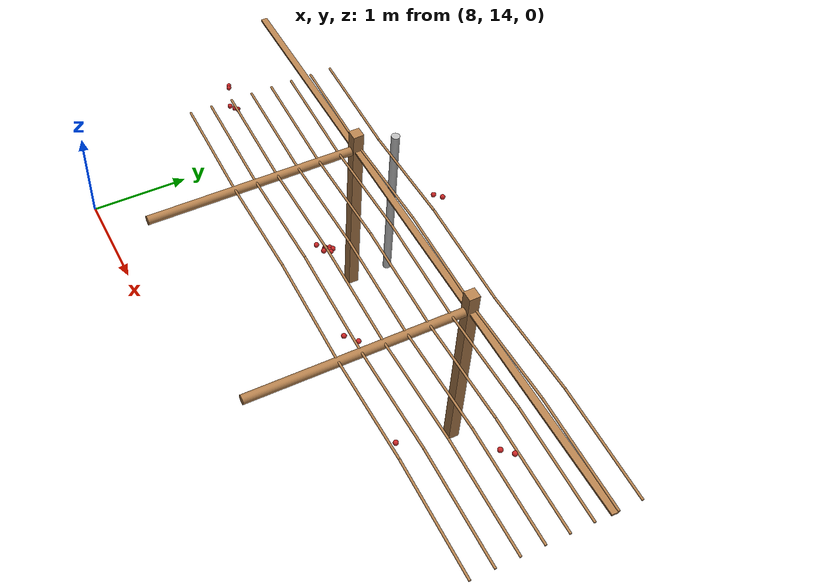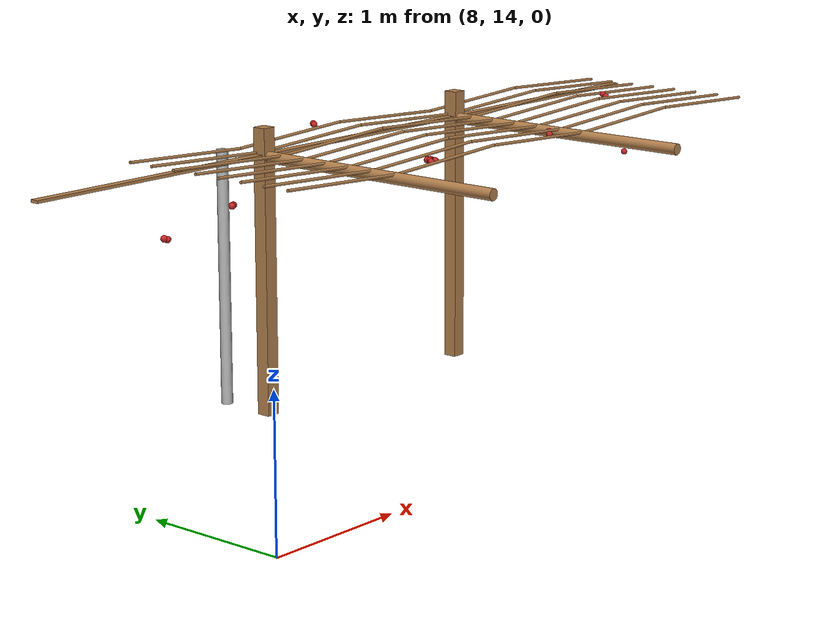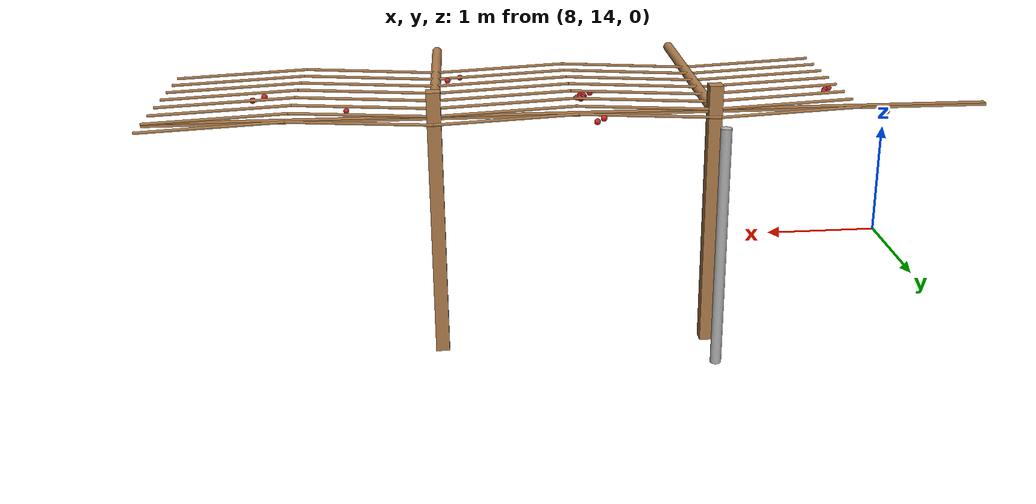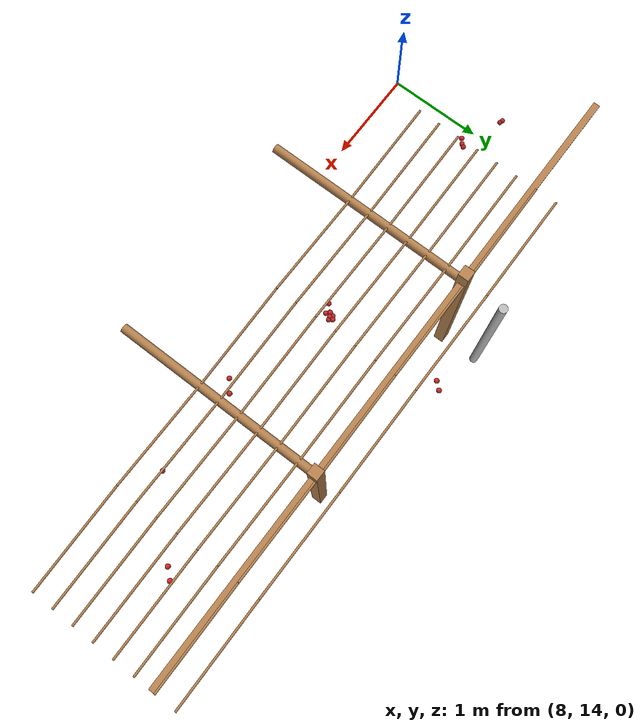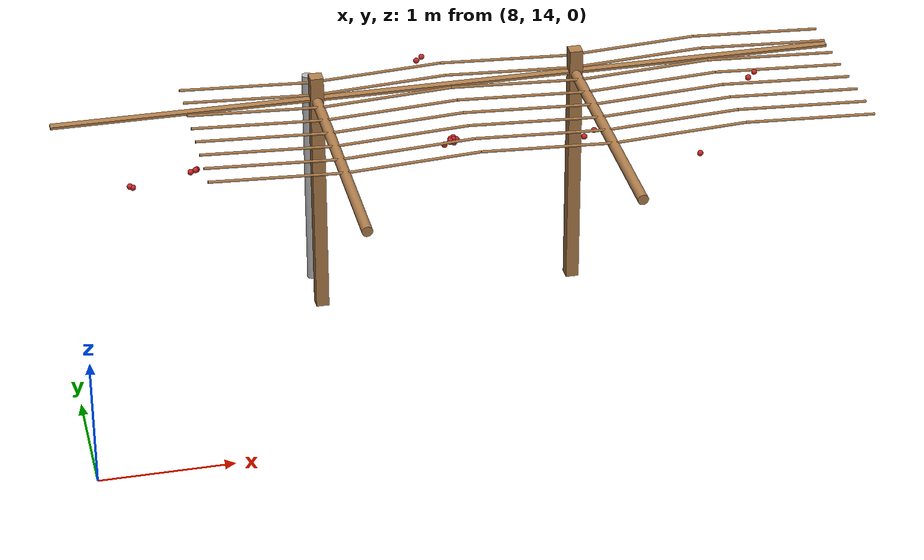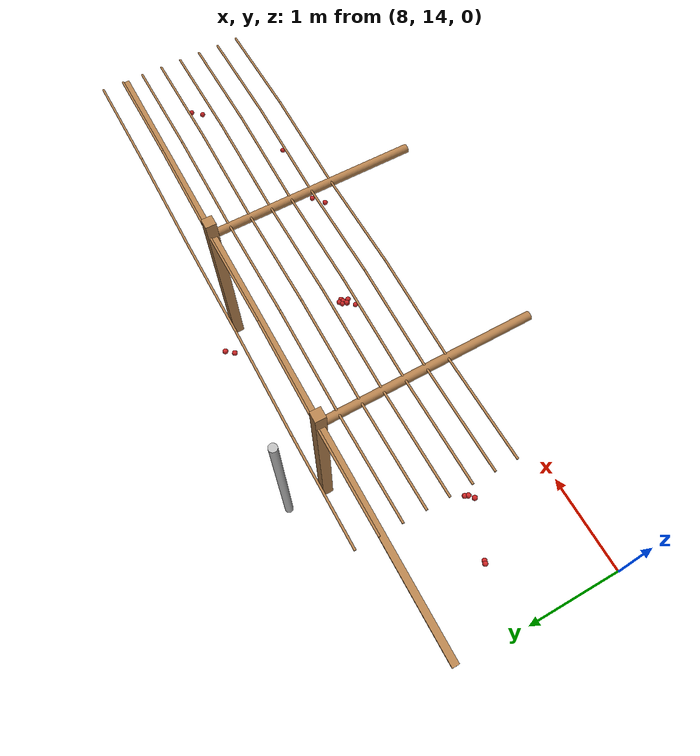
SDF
<sdf version="1.4">
 <model name="pergola">
  <include><name>post_63</name><pose>10.0 16.0 0 0 0 0</pose><uri>model://post</uri></include>
  <include><name>post_74</name><pose>12.0 16.0 0 0 0 0</pose><uri>model://post</uri></include>
  <link name="beam_52">
   <pose>9.0 16.0 1.81 0 0 0</pose>
   <collision name="collision"><geometry><box><size>2.0 0.06 0.02</size></box></geometry></collision>
   <visual name="visual">
    <geometry><box><size>2.0 0.06 0.02</size></box></geometry>
    <material><script><name>Gazebo/Wood</name></script></material>
   </visual>
   <inertial>
    <mass>5</mass>
    <inertia>
     <ixx>0.0016666666666666668</ixx>
     <ixy>0.0</ixy>
     <ixz>0.0</ixz>
     <iyy>1.6681666666666664</iyy>
     <iyz>0.0</iyz>
     <izz>1.6668333333333332</izz>
    </inertia>
   </inertial>
  </link>
  <link name="beam_63">
   <pose>11.0 16.0 1.81 0 0 0</pose>
   <collision name="collision"><geometry><box><size>2.0 0.06 0.02</size></box></geometry></collision>
   <visual name="visual">
    <geometry><box><size>2.0 0.06 0.02</size></box></geometry>
    <material><script><name>Gazebo/Wood</name></script></material>
   </visual>
   <inertial>
    <mass>5</mass>
    <inertia>
     <ixx>0.0016666666666666668</ixx>
     <ixy>0.0</ixy>
     <ixz>0.0</ixz>
     <iyy>1.6681666666666664</iyy>
     <iyz>0.0</iyz>
     <izz>1.6668333333333332</izz>
    </inertia>
   </inertial>
  </link>
  <link name="beam_74">
   <pose>13.0 16.0 1.81 0 0 0</pose>
   <collision name="collision"><geometry><box><size>2.0 0.06 0.02</size></box></geometry></collision>
   <visual name="visual">
    <geometry><box><size>2.0 0.06 0.02</size></box></geometry>
    <material><script><name>Gazebo/Wood</name></script></material>
   </visual>
   <inertial>
    <mass>5</mass>
    <inertia>
     <ixx>0.0016666666666666668</ixx>
     <ixy>0.0</ixy>
     <ixz>0.0</ixz>
     <iyy>1.6681666666666664</iyy>
     <iyz>0.0</iyz>
     <izz>1.6668333333333332</izz>
    </inertia>
   </inertial>
  </link>
  <include><name>tree_58</name><pose>10.0 16.4 0 0 0 0</pose><uri>model://tree_trunk</uri></include>
  <link name="baseBranch_57">
   <pose>10.0 15.0 1.8 1.5707963267948966 0 0</pose>
   <collision name="collision">
    <geometry><cylinder><radius>0.04</radius><length>1.94</length></cylinder></geometry>
   </collision>
   <visual name="visual">
    <geometry><cylinder><radius>0.04</radius><length>1.94</length></cylinder></geometry>
    <material><script><name>Gazebo/WoodFloor</name></script></material>
   </visual>
   <inertial>
    <mass>10</mass>
    <inertia>
     <ixx>3.140333333333333</ixx>
     <ixy>0.0</ixy>
     <ixz>0.0</ixz>
     <iyy>3.140333333333333</iyy>
     <iyz>0.0</iyz>
     <izz>0.008</izz>
    </inertia>
   </inertial>
  </link>
  <link name="baseBranch_67">
   <pose>12.0 15.0 1.8 1.5707963267948966 0 0</pose>
   <collision name="collision">
    <geometry><cylinder><radius>0.04</radius><length>1.94</length></cylinder></geometry>
   </collision>
   <visual name="visual">
    <geometry><cylinder><radius>0.04</radius><length>1.94</length></cylinder></geometry>
    <material><script><name>Gazebo/WoodFloor</name></script></material>
   </visual>
   <inertial>
    <mass>10</mass>
    <inertia>
     <ixx>3.140333333333333</ixx>
     <ixy>0.0</ixy>
     <ixz>0.0</ixz>
     <iyy>3.140333333333333</iyy>
     <iyz>0.0</iyz>
     <izz>0.008</izz>
    </inertia>
   </inertial>
  </link>
  <link name="vine_949">
   <pose>9.5 14.83 1.85 0 -1.5208379310729538 0</pose>
   <collision name="collision">
    <geometry><cylinder><radius>0.01</radius><length>1.0012492197250393</length></cylinder></geometry>
   </collision>
   <visual name="visual">
    <geometry><cylinder><radius>0.01</radius><length>1.0012492197250393</length></cylinder></geometry>
    <material><script><name>Gazebo/WoodFloor</name></script></material>
   </visual>
   <inertial>
    <mass>5</mass>
    <inertia>
     <ixx>0.41783333333333345</ixx>
     <ixy>0.0</ixy>
     <ixz>0.0</ixz>
     <iyy>0.41783333333333345</iyy>
     <iyz>0.0</iyz>
     <izz>0.00025</izz>
    </inertia>
   </inertial>
  </link>
  <link name="vine_951">
   <pose>9.5 15.03 1.85 0 -1.5208379310729538 0</pose>
   <collision name="collision">
    <geometry><cylinder><radius>0.01</radius><length>1.0012492197250393</length></cylinder></geometry>
   </collision>
   <visual name="visual">
    <geometry><cylinder><radius>0.01</radius><length>1.0012492197250393</length></cylinder></geometry>
    <material><script><name>Gazebo/WoodFloor</name></script></material>
   </visual>
   <inertial>
    <mass>5</mass>
    <inertia>
     <ixx>0.41783333333333345</ixx>
     <ixy>0.0</ixy>
     <ixz>0.0</ixz>
     <iyy>0.41783333333333345</iyy>
     <iyz>0.0</iyz>
     <izz>0.00025</izz>
    </inertia>
   </inertial>
  </link>
  <link name="vine_953">
   <pose>9.5 15.23 1.85 0 -1.5208379310729538 0</pose>
   <collision name="collision">
    <geometry><cylinder><radius>0.01</radius><length>1.0012492197250393</length></cylinder></geometry>
   </collision>
   <visual name="visual">
    <geometry><cylinder><radius>0.01</radius><length>1.0012492197250393</length></cylinder></geometry>
    <material><script><name>Gazebo/WoodFloor</name></script></material>
   </visual>
   <inertial>
    <mass>5</mass>
    <inertia>
     <ixx>0.41783333333333345</ixx>
     <ixy>0.0</ixy>
     <ixz>0.0</ixz>
     <iyy>0.41783333333333345</iyy>
     <iyz>0.0</iyz>
     <izz>0.00025</izz>
    </inertia>
   </inertial>
  </link>
  <link name="vine_955">
   <pose>9.5 15.43 1.85 0 -1.5208379310729538 0</pose>
   <collision name="collision">
    <geometry><cylinder><radius>0.01</radius><length>1.0012492197250393</length></cylinder></geometry>
   </collision>
   <visual name="visual">
    <geometry><cylinder><radius>0.01</radius><length>1.0012492197250393</length></cylinder></geometry>
    <material><script><name>Gazebo/WoodFloor</name></script></material>
   </visual>
   <inertial>
    <mass>5</mass>
    <inertia>
     <ixx>0.41783333333333345</ixx>
     <ixy>0.0</ixy>
     <ixz>0.0</ixz>
     <iyy>0.41783333333333345</iyy>
     <iyz>0.0</iyz>
     <izz>0.00025</izz>
    </inertia>
   </inertial>
  </link>
  <link name="vine_957">
   <pose>9.5 15.63 1.85 0 -1.5208379310729538 0</pose>
   <collision name="collision">
    <geometry><cylinder><radius>0.01</radius><length>1.0012492197250393</length></cylinder></geometry>
   </collision>
   <visual name="visual">
    <geometry><cylinder><radius>0.01</radius><length>1.0012492197250393</length></cylinder></geometry>
    <material><script><name>Gazebo/WoodFloor</name></script></material>
   </visual>
   <inertial>
    <mass>5</mass>
    <inertia>
     <ixx>0.41783333333333345</ixx>
     <ixy>0.0</ixy>
     <ixz>0.0</ixz>
     <iyy>0.41783333333333345</iyy>
     <iyz>0.0</iyz>
     <izz>0.00025</izz>
    </inertia>
   </inertial>
  </link>
  <link name="vine_959">
   <pose>9.5 15.83 1.85 0 -1.5208379310729538 0</pose>
   <collision name="collision">
    <geometry><cylinder><radius>0.01</radius><length>1.0012492197250393</length></cylinder></geometry>
   </collision>
   <visual name="visual">
    <geometry><cylinder><radius>0.01</radius><length>1.0012492197250393</length></cylinder></geometry>
    <material><script><name>Gazebo/WoodFloor</name></script></material>
   </visual>
   <inertial>
    <mass>5</mass>
    <inertia>
     <ixx>0.41783333333333345</ixx>
     <ixy>0.0</ixy>
     <ixz>0.0</ixz>
     <iyy>0.41783333333333345</iyy>
     <iyz>0.0</iyz>
     <izz>0.00025</izz>
    </inertia>
   </inertial>
  </link>
  <link name="vine_961">
   <pose>9.5 16.03 1.85 0 -1.5208379310729538 0</pose>
   <collision name="collision">
    <geometry><cylinder><radius>0.01</radius><length>1.0012492197250393</length></cylinder></geometry>
   </collision>
   <visual name="visual">
    <geometry><cylinder><radius>0.01</radius><length>1.0012492197250393</length></cylinder></geometry>
    <material><script><name>Gazebo/WoodFloor</name></script></material>
   </visual>
   <inertial>
    <mass>5</mass>
    <inertia>
     <ixx>0.41783333333333345</ixx>
     <ixy>0.0</ixy>
     <ixz>0.0</ixz>
     <iyy>0.41783333333333345</iyy>
     <iyz>0.0</iyz>
     <izz>0.00025</izz>
    </inertia>
   </inertial>
  </link>
  <link name="vine_963">
   <pose>9.5 16.23 1.85 0 -1.5208379310729538 0</pose>
   <collision name="collision">
    <geometry><cylinder><radius>0.01</radius><length>1.0012492197250393</length></cylinder></geometry>
   </collision>
   <visual name="visual">
    <geometry><cylinder><radius>0.01</radius><length>1.0012492197250393</length></cylinder></geometry>
    <material><script><name>Gazebo/WoodFloor</name></script></material>
   </visual>
   <inertial>
    <mass>5</mass>
    <inertia>
     <ixx>0.41783333333333345</ixx>
     <ixy>0.0</ixy>
     <ixz>0.0</ixz>
     <iyy>0.41783333333333345</iyy>
     <iyz>0.0</iyz>
     <izz>0.00025</izz>
    </inertia>
   </inertial>
  </link>
  <link name="vine_1148">
   <pose>10.5 14.83 1.85 0 1.5208379310729538 0</pose>
   <collision name="collision">
    <geometry><cylinder><radius>0.01</radius><length>1.0012492197250393</length></cylinder></geometry>
   </collision>
   <visual name="visual">
    <geometry><cylinder><radius>0.01</radius><length>1.0012492197250393</length></cylinder></geometry>
    <material><script><name>Gazebo/WoodFloor</name></script></material>
   </visual>
   <inertial>
    <mass>5</mass>
    <inertia>
     <ixx>0.41783333333333345</ixx>
     <ixy>0.0</ixy>
     <ixz>0.0</ixz>
     <iyy>0.41783333333333345</iyy>
     <iyz>0.0</iyz>
     <izz>0.00025</izz>
    </inertia>
   </inertial>
  </link>
  <link name="vine_1149">
   <pose>11.5 14.83 1.85 0 -1.5208379310729538 0</pose>
   <collision name="collision">
    <geometry><cylinder><radius>0.01</radius><length>1.0012492197250393</length></cylinder></geometry>
   </collision>
   <visual name="visual">
    <geometry><cylinder><radius>0.01</radius><length>1.0012492197250393</length></cylinder></geometry>
    <material><script><name>Gazebo/WoodFloor</name></script></material>
   </visual>
   <inertial>
    <mass>5</mass>
    <inertia>
     <ixx>0.41783333333333345</ixx>
     <ixy>0.0</ixy>
     <ixz>0.0</ixz>
     <iyy>0.41783333333333345</iyy>
     <iyz>0.0</iyz>
     <izz>0.00025</izz>
    </inertia>
   </inertial>
  </link>
  <link name="vine_1150">
   <pose>10.5 15.03 1.85 0 1.5208379310729538 0</pose>
   <collision name="collision">
    <geometry><cylinder><radius>0.01</radius><length>1.0012492197250393</length></cylinder></geometry>
   </collision>
   <visual name="visual">
    <geometry><cylinder><radius>0.01</radius><length>1.0012492197250393</length></cylinder></geometry>
    <material><script><name>Gazebo/WoodFloor</name></script></material>
   </visual>
   <inertial>
    <mass>5</mass>
    <inertia>
     <ixx>0.41783333333333345</ixx>
     <ixy>0.0</ixy>
     <ixz>0.0</ixz>
     <iyy>0.41783333333333345</iyy>
     <iyz>0.0</iyz>
     <izz>0.00025</izz>
    </inertia>
   </inertial>
  </link>
  <link name="vine_1151">
   <pose>11.5 15.03 1.85 0 -1.5208379310729538 0</pose>
   <collision name="collision">
    <geometry><cylinder><radius>0.01</radius><length>1.0012492197250393</length></cylinder></geometry>
   </collision>
   <visual name="visual">
    <geometry><cylinder><radius>0.01</radius><length>1.0012492197250393</length></cylinder></geometry>
    <material><script><name>Gazebo/WoodFloor</name></script></material>
   </visual>
   <inertial>
    <mass>5</mass>
    <inertia>
     <ixx>0.41783333333333345</ixx>
     <ixy>0.0</ixy>
     <ixz>0.0</ixz>
     <iyy>0.41783333333333345</iyy>
     <iyz>0.0</iyz>
     <izz>0.00025</izz>
    </inertia>
   </inertial>
  </link>
  <link name="vine_1152">
   <pose>10.5 15.23 1.85 0 1.5208379310729538 0</pose>
   <collision name="collision">
    <geometry><cylinder><radius>0.01</radius><length>1.0012492197250393</length></cylinder></geometry>
   </collision>
   <visual name="visual">
    <geometry><cylinder><radius>0.01</radius><length>1.0012492197250393</length></cylinder></geometry>
    <material><script><name>Gazebo/WoodFloor</name></script></material>
   </visual>
   <inertial>
    <mass>5</mass>
    <inertia>
     <ixx>0.41783333333333345</ixx>
     <ixy>0.0</ixy>
     <ixz>0.0</ixz>
     <iyy>0.41783333333333345</iyy>
     <iyz>0.0</iyz>
     <izz>0.00025</izz>
    </inertia>
   </inertial>
  </link>
  <link name="vine_1153">
   <pose>11.5 15.23 1.85 0 -1.5208379310729538 0</pose>
   <collision name="collision">
    <geometry><cylinder><radius>0.01</radius><length>1.0012492197250393</length></cylinder></geometry>
   </collision>
   <visual name="visual">
    <geometry><cylinder><radius>0.01</radius><length>1.0012492197250393</length></cylinder></geometry>
    <material><script><name>Gazebo/WoodFloor</name></script></material>
   </visual>
   <inertial>
    <mass>5</mass>
    <inertia>
     <ixx>0.41783333333333345</ixx>
     <ixy>0.0</ixy>
     <ixz>0.0</ixz>
     <iyy>0.41783333333333345</iyy>
     <iyz>0.0</iyz>
     <izz>0.00025</izz>
    </inertia>
   </inertial>
  </link>
  <link name="vine_1154">
   <pose>10.5 15.43 1.85 0 1.5208379310729538 0</pose>
   <collision name="collision">
    <geometry><cylinder><radius>0.01</radius><length>1.0012492197250393</length></cylinder></geometry>
   </collision>
   <visual name="visual">
    <geometry><cylinder><radius>0.01</radius><length>1.0012492197250393</length></cylinder></geometry>
    <material><script><name>Gazebo/WoodFloor</name></script></material>
   </visual>
   <inertial>
    <mass>5</mass>
    <inertia>
     <ixx>0.41783333333333345</ixx>
     <ixy>0.0</ixy>
     <ixz>0.0</ixz>
     <iyy>0.41783333333333345</iyy>
     <iyz>0.0</iyz>
     <izz>0.00025</izz>
    </inertia>
   </inertial>
  </link>
  <link name="vine_1155">
   <pose>11.5 15.43 1.85 0 -1.5208379310729538 0</pose>
   <collision name="collision">
    <geometry><cylinder><radius>0.01</radius><length>1.0012492197250393</length></cylinder></geometry>
   </collision>
   <visual name="visual">
    <geometry><cylinder><radius>0.01</radius><length>1.0012492197250393</length></cylinder></geometry>
    <material><script><name>Gazebo/WoodFloor</name></script></material>
   </visual>
   <inertial>
    <mass>5</mass>
    <inertia>
     <ixx>0.41783333333333345</ixx>
     <ixy>0.0</ixy>
     <ixz>0.0</ixz>
     <iyy>0.41783333333333345</iyy>
     <iyz>0.0</iyz>
     <izz>0.00025</izz>
    </inertia>
   </inertial>
  </link>
  <link name="vine_1156">
   <pose>10.5 15.63 1.85 0 1.5208379310729538 0</pose>
   <collision name="collision">
    <geometry><cylinder><radius>0.01</radius><length>1.0012492197250393</length></cylinder></geometry>
   </collision>
   <visual name="visual">
    <geometry><cylinder><radius>0.01</radius><length>1.0012492197250393</length></cylinder></geometry>
    <material><script><name>Gazebo/WoodFloor</name></script></material>
   </visual>
   <inertial>
    <mass>5</mass>
    <inertia>
     <ixx>0.41783333333333345</ixx>
     <ixy>0.0</ixy>
     <ixz>0.0</ixz>
     <iyy>0.41783333333333345</iyy>
     <iyz>0.0</iyz>
     <izz>0.00025</izz>
    </inertia>
   </inertial>
  </link>
  <link name="vine_1157">
   <pose>11.5 15.63 1.85 0 -1.5208379310729538 0</pose>
   <collision name="collision">
    <geometry><cylinder><radius>0.01</radius><length>1.0012492197250393</length></cylinder></geometry>
   </collision>
   <visual name="visual">
    <geometry><cylinder><radius>0.01</radius><length>1.0012492197250393</length></cylinder></geometry>
    <material><script><name>Gazebo/WoodFloor</name></script></material>
   </visual>
   <inertial>
    <mass>5</mass>
    <inertia>
     <ixx>0.41783333333333345</ixx>
     <ixy>0.0</ixy>
     <ixz>0.0</ixz>
     <iyy>0.41783333333333345</iyy>
     <iyz>0.0</iyz>
     <izz>0.00025</izz>
    </inertia>
   </inertial>
  </link>
  <link name="vine_1158">
   <pose>10.5 15.83 1.85 0 1.5208379310729538 0</pose>
   <collision name="collision">
    <geometry><cylinder><radius>0.01</radius><length>1.0012492197250393</length></cylinder></geometry>
   </collision>
   <visual name="visual">
    <geometry><cylinder><radius>0.01</radius><length>1.0012492197250393</length></cylinder></geometry>
    <material><script><name>Gazebo/WoodFloor</name></script></material>
   </visual>
   <inertial>
    <mass>5</mass>
    <inertia>
     <ixx>0.41783333333333345</ixx>
     <ixy>0.0</ixy>
     <ixz>0.0</ixz>
     <iyy>0.41783333333333345</iyy>
     <iyz>0.0</iyz>
     <izz>0.00025</izz>
    </inertia>
   </inertial>
  </link>
  <link name="vine_1159">
   <pose>11.5 15.83 1.85 0 -1.5208379310729538 0</pose>
   <collision name="collision">
    <geometry><cylinder><radius>0.01</radius><length>1.0012492197250393</length></cylinder></geometry>
   </collision>
   <visual name="visual">
    <geometry><cylinder><radius>0.01</radius><length>1.0012492197250393</length></cylinder></geometry>
    <material><script><name>Gazebo/WoodFloor</name></script></material>
   </visual>
   <inertial>
    <mass>5</mass>
    <inertia>
     <ixx>0.41783333333333345</ixx>
     <ixy>0.0</ixy>
     <ixz>0.0</ixz>
     <iyy>0.41783333333333345</iyy>
     <iyz>0.0</iyz>
     <izz>0.00025</izz>
    </inertia>
   </inertial>
  </link>
  <link name="vine_1160">
   <pose>10.5 16.03 1.85 0 1.5208379310729538 0</pose>
   <collision name="collision">
    <geometry><cylinder><radius>0.01</radius><length>1.0012492197250393</length></cylinder></geometry>
   </collision>
   <visual name="visual">
    <geometry><cylinder><radius>0.01</radius><length>1.0012492197250393</length></cylinder></geometry>
    <material><script><name>Gazebo/WoodFloor</name></script></material>
   </visual>
   <inertial>
    <mass>5</mass>
    <inertia>
     <ixx>0.41783333333333345</ixx>
     <ixy>0.0</ixy>
     <ixz>0.0</ixz>
     <iyy>0.41783333333333345</iyy>
     <iyz>0.0</iyz>
     <izz>0.00025</izz>
    </inertia>
   </inertial>
  </link>
  <link name="vine_1161">
   <pose>11.5 16.03 1.85 0 -1.5208379310729538 0</pose>
   <collision name="collision">
    <geometry><cylinder><radius>0.01</radius><length>1.0012492197250393</length></cylinder></geometry>
   </collision>
   <visual name="visual">
    <geometry><cylinder><radius>0.01</radius><length>1.0012492197250393</length></cylinder></geometry>
    <material><script><name>Gazebo/WoodFloor</name></script></material>
   </visual>
   <inertial>
    <mass>5</mass>
    <inertia>
     <ixx>0.41783333333333345</ixx>
     <ixy>0.0</ixy>
     <ixz>0.0</ixz>
     <iyy>0.41783333333333345</iyy>
     <iyz>0.0</iyz>
     <izz>0.00025</izz>
    </inertia>
   </inertial>
  </link>
  <link name="vine_1162">
   <pose>10.5 16.23 1.85 0 1.5208379310729538 0</pose>
   <collision name="collision">
    <geometry><cylinder><radius>0.01</radius><length>1.0012492197250393</length></cylinder></geometry>
   </collision>
   <visual name="visual">
    <geometry><cylinder><radius>0.01</radius><length>1.0012492197250393</length></cylinder></geometry>
    <material><script><name>Gazebo/WoodFloor</name></script></material>
   </visual>
   <inertial>
    <mass>5</mass>
    <inertia>
     <ixx>0.41783333333333345</ixx>
     <ixy>0.0</ixy>
     <ixz>0.0</ixz>
     <iyy>0.41783333333333345</iyy>
     <iyz>0.0</iyz>
     <izz>0.00025</izz>
    </inertia>
   </inertial>
  </link>
  <link name="vine_1163">
   <pose>11.5 16.23 1.85 0 -1.5208379310729538 0</pose>
   <collision name="collision">
    <geometry><cylinder><radius>0.01</radius><length>1.0012492197250393</length></cylinder></geometry>
   </collision>
   <visual name="visual">
    <geometry><cylinder><radius>0.01</radius><length>1.0012492197250393</length></cylinder></geometry>
    <material><script><name>Gazebo/WoodFloor</name></script></material>
   </visual>
   <inertial>
    <mass>5</mass>
    <inertia>
     <ixx>0.41783333333333345</ixx>
     <ixy>0.0</ixy>
     <ixz>0.0</ixz>
     <iyy>0.41783333333333345</iyy>
     <iyz>0.0</iyz>
     <izz>0.00025</izz>
    </inertia>
   </inertial>
  </link>
  <link name="vine_1348">
   <pose>12.5 14.83 1.85 0 1.5208379310729538 0</pose>
   <collision name="collision">
    <geometry><cylinder><radius>0.01</radius><length>1.0012492197250393</length></cylinder></geometry>
   </collision>
   <visual name="visual">
    <geometry><cylinder><radius>0.01</radius><length>1.0012492197250393</length></cylinder></geometry>
    <material><script><name>Gazebo/WoodFloor</name></script></material>
   </visual>
   <inertial>
    <mass>5</mass>
    <inertia>
     <ixx>0.41783333333333345</ixx>
     <ixy>0.0</ixy>
     <ixz>0.0</ixz>
     <iyy>0.41783333333333345</iyy>
     <iyz>0.0</iyz>
     <izz>0.00025</izz>
    </inertia>
   </inertial>
  </link>
  <link name="vine_1349">
   <pose>13.5 14.83 1.85 0 -1.5208379310729538 0</pose>
   <collision name="collision">
    <geometry><cylinder><radius>0.01</radius><length>1.0012492197250393</length></cylinder></geometry>
   </collision>
   <visual name="visual">
    <geometry><cylinder><radius>0.01</radius><length>1.0012492197250393</length></cylinder></geometry>
    <material><script><name>Gazebo/WoodFloor</name></script></material>
   </visual>
   <inertial>
    <mass>5</mass>
    <inertia>
     <ixx>0.41783333333333345</ixx>
     <ixy>0.0</ixy>
     <ixz>0.0</ixz>
     <iyy>0.41783333333333345</iyy>
     <iyz>0.0</iyz>
     <izz>0.00025</izz>
    </inertia>
   </inertial>
  </link>
  <link name="vine_1350">
   <pose>12.5 15.03 1.85 0 1.5208379310729538 0</pose>
   <collision name="collision">
    <geometry><cylinder><radius>0.01</radius><length>1.0012492197250393</length></cylinder></geometry>
   </collision>
   <visual name="visual">
    <geometry><cylinder><radius>0.01</radius><length>1.0012492197250393</length></cylinder></geometry>
    <material><script><name>Gazebo/WoodFloor</name></script></material>
   </visual>
   <inertial>
    <mass>5</mass>
    <inertia>
     <ixx>0.41783333333333345</ixx>
     <ixy>0.0</ixy>
     <ixz>0.0</ixz>
     <iyy>0.41783333333333345</iyy>
     <iyz>0.0</iyz>
     <izz>0.00025</izz>
    </inertia>
   </inertial>
  </link>
  <link name="vine_1351">
   <pose>13.5 15.03 1.85 0 -1.5208379310729538 0</pose>
   <collision name="collision">
    <geometry><cylinder><radius>0.01</radius><length>1.0012492197250393</length></cylinder></geometry>
   </collision>
   <visual name="visual">
    <geometry><cylinder><radius>0.01</radius><length>1.0012492197250393</length></cylinder></geometry>
    <material><script><name>Gazebo/WoodFloor</name></script></material>
   </visual>
   <inertial>
    <mass>5</mass>
    <inertia>
     <ixx>0.41783333333333345</ixx>
     <ixy>0.0</ixy>
     <ixz>0.0</ixz>
     <iyy>0.41783333333333345</iyy>
     <iyz>0.0</iyz>
     <izz>0.00025</izz>
    </inertia>
   </inertial>
  </link>
  <link name="vine_1352">
   <pose>12.5 15.23 1.85 0 1.5208379310729538 0</pose>
   <collision name="collision">
    <geometry><cylinder><radius>0.01</radius><length>1.0012492197250393</length></cylinder></geometry>
   </collision>
   <visual name="visual">
    <geometry><cylinder><radius>0.01</radius><length>1.0012492197250393</length></cylinder></geometry>
    <material><script><name>Gazebo/WoodFloor</name></script></material>
   </visual>
   <inertial>
    <mass>5</mass>
    <inertia>
     <ixx>0.41783333333333345</ixx>
     <ixy>0.0</ixy>
     <ixz>0.0</ixz>
     <iyy>0.41783333333333345</iyy>
     <iyz>0.0</iyz>
     <izz>0.00025</izz>
    </inertia>
   </inertial>
  </link>
  <link name="vine_1353">
   <pose>13.5 15.23 1.85 0 -1.5208379310729538 0</pose>
   <collision name="collision">
    <geometry><cylinder><radius>0.01</radius><length>1.0012492197250393</length></cylinder></geometry>
   </collision>
   <visual name="visual">
    <geometry><cylinder><radius>0.01</radius><length>1.0012492197250393</length></cylinder></geometry>
    <material><script><name>Gazebo/WoodFloor</name></script></material>
   </visual>
   <inertial>
    <mass>5</mass>
    <inertia>
     <ixx>0.41783333333333345</ixx>
     <ixy>0.0</ixy>
     <ixz>0.0</ixz>
     <iyy>0.41783333333333345</iyy>
     <iyz>0.0</iyz>
     <izz>0.00025</izz>
    </inertia>
   </inertial>
  </link>
  <link name="vine_1354">
   <pose>12.5 15.43 1.85 0 1.5208379310729538 0</pose>
   <collision name="collision">
    <geometry><cylinder><radius>0.01</radius><length>1.0012492197250393</length></cylinder></geometry>
   </collision>
   <visual name="visual">
    <geometry><cylinder><radius>0.01</radius><length>1.0012492197250393</length></cylinder></geometry>
    <material><script><name>Gazebo/WoodFloor</name></script></material>
   </visual>
   <inertial>
    <mass>5</mass>
    <inertia>
     <ixx>0.41783333333333345</ixx>
     <ixy>0.0</ixy>
     <ixz>0.0</ixz>
     <iyy>0.41783333333333345</iyy>
     <iyz>0.0</iyz>
     <izz>0.00025</izz>
    </inertia>
   </inertial>
  </link>
  <link name="vine_1355">
   <pose>13.5 15.43 1.85 0 -1.5208379310729538 0</pose>
   <collision name="collision">
    <geometry><cylinder><radius>0.01</radius><length>1.0012492197250393</length></cylinder></geometry>
   </collision>
   <visual name="visual">
    <geometry><cylinder><radius>0.01</radius><length>1.0012492197250393</length></cylinder></geometry>
    <material><script><name>Gazebo/WoodFloor</name></script></material>
   </visual>
   <inertial>
    <mass>5</mass>
    <inertia>
     <ixx>0.41783333333333345</ixx>
     <ixy>0.0</ixy>
     <ixz>0.0</ixz>
     <iyy>0.41783333333333345</iyy>
     <iyz>0.0</iyz>
     <izz>0.00025</izz>
    </inertia>
   </inertial>
  </link>
  <link name="vine_1356">
   <pose>12.5 15.63 1.85 0 1.5208379310729538 0</pose>
   <collision name="collision">
    <geometry><cylinder><radius>0.01</radius><length>1.0012492197250393</length></cylinder></geometry>
   </collision>
   <visual name="visual">
    <geometry><cylinder><radius>0.01</radius><length>1.0012492197250393</length></cylinder></geometry>
    <material><script><name>Gazebo/WoodFloor</name></script></material>
   </visual>
   <inertial>
    <mass>5</mass>
    <inertia>
     <ixx>0.41783333333333345</ixx>
     <ixy>0.0</ixy>
     <ixz>0.0</ixz>
     <iyy>0.41783333333333345</iyy>
     <iyz>0.0</iyz>
     <izz>0.00025</izz>
    </inertia>
   </inertial>
  </link>
  <link name="vine_1357">
   <pose>13.5 15.63 1.85 0 -1.5208379310729538 0</pose>
   <collision name="collision">
    <geometry><cylinder><radius>0.01</radius><length>1.0012492197250393</length></cylinder></geometry>
   </collision>
   <visual name="visual">
    <geometry><cylinder><radius>0.01</radius><length>1.0012492197250393</length></cylinder></geometry>
    <material><script><name>Gazebo/WoodFloor</name></script></material>
   </visual>
   <inertial>
    <mass>5</mass>
    <inertia>
     <ixx>0.41783333333333345</ixx>
     <ixy>0.0</ixy>
     <ixz>0.0</ixz>
     <iyy>0.41783333333333345</iyy>
     <iyz>0.0</iyz>
     <izz>0.00025</izz>
    </inertia>
   </inertial>
  </link>
  <link name="vine_1358">
   <pose>12.5 15.83 1.85 0 1.5208379310729538 0</pose>
   <collision name="collision">
    <geometry><cylinder><radius>0.01</radius><length>1.0012492197250393</length></cylinder></geometry>
   </collision>
   <visual name="visual">
    <geometry><cylinder><radius>0.01</radius><length>1.0012492197250393</length></cylinder></geometry>
    <material><script><name>Gazebo/WoodFloor</name></script></material>
   </visual>
   <inertial>
    <mass>5</mass>
    <inertia>
     <ixx>0.41783333333333345</ixx>
     <ixy>0.0</ixy>
     <ixz>0.0</ixz>
     <iyy>0.41783333333333345</iyy>
     <iyz>0.0</iyz>
     <izz>0.00025</izz>
    </inertia>
   </inertial>
  </link>
  <link name="vine_1359">
   <pose>13.5 15.83 1.85 0 -1.5208379310729538 0</pose>
   <collision name="collision">
    <geometry><cylinder><radius>0.01</radius><length>1.0012492197250393</length></cylinder></geometry>
   </collision>
   <visual name="visual">
    <geometry><cylinder><radius>0.01</radius><length>1.0012492197250393</length></cylinder></geometry>
    <material><script><name>Gazebo/WoodFloor</name></script></material>
   </visual>
   <inertial>
    <mass>5</mass>
    <inertia>
     <ixx>0.41783333333333345</ixx>
     <ixy>0.0</ixy>
     <ixz>0.0</ixz>
     <iyy>0.41783333333333345</iyy>
     <iyz>0.0</iyz>
     <izz>0.00025</izz>
    </inertia>
   </inertial>
  </link>
  <link name="vine_1360">
   <pose>12.5 16.03 1.85 0 1.5208379310729538 0</pose>
   <collision name="collision">
    <geometry><cylinder><radius>0.01</radius><length>1.0012492197250393</length></cylinder></geometry>
   </collision>
   <visual name="visual">
    <geometry><cylinder><radius>0.01</radius><length>1.0012492197250393</length></cylinder></geometry>
    <material><script><name>Gazebo/WoodFloor</name></script></material>
   </visual>
   <inertial>
    <mass>5</mass>
    <inertia>
     <ixx>0.41783333333333345</ixx>
     <ixy>0.0</ixy>
     <ixz>0.0</ixz>
     <iyy>0.41783333333333345</iyy>
     <iyz>0.0</iyz>
     <izz>0.00025</izz>
    </inertia>
   </inertial>
  </link>
  <link name="vine_1361">
   <pose>13.5 16.03 1.85 0 -1.5208379310729538 0</pose>
   <collision name="collision">
    <geometry><cylinder><radius>0.01</radius><length>1.0012492197250393</length></cylinder></geometry>
   </collision>
   <visual name="visual">
    <geometry><cylinder><radius>0.01</radius><length>1.0012492197250393</length></cylinder></geometry>
    <material><script><name>Gazebo/WoodFloor</name></script></material>
   </visual>
   <inertial>
    <mass>5</mass>
    <inertia>
     <ixx>0.41783333333333345</ixx>
     <ixy>0.0</ixy>
     <ixz>0.0</ixz>
     <iyy>0.41783333333333345</iyy>
     <iyz>0.0</iyz>
     <izz>0.00025</izz>
    </inertia>
   </inertial>
  </link>
  <link name="vine_1362">
   <pose>12.5 16.23 1.85 0 1.5208379310729538 0</pose>
   <collision name="collision">
    <geometry><cylinder><radius>0.01</radius><length>1.0012492197250393</length></cylinder></geometry>
   </collision>
   <visual name="visual">
    <geometry><cylinder><radius>0.01</radius><length>1.0012492197250393</length></cylinder></geometry>
    <material><script><name>Gazebo/WoodFloor</name></script></material>
   </visual>
   <inertial>
    <mass>5</mass>
    <inertia>
     <ixx>0.41783333333333345</ixx>
     <ixy>0.0</ixy>
     <ixz>0.0</ixz>
     <iyy>0.41783333333333345</iyy>
     <iyz>0.0</iyz>
     <izz>0.00025</izz>
    </inertia>
   </inertial>
  </link>
  <link name="vine_1363">
   <pose>13.5 16.23 1.85 0 -1.5208379310729538 0</pose>
   <collision name="collision">
    <geometry><cylinder><radius>0.01</radius><length>1.0012492197250393</length></cylinder></geometry>
   </collision>
   <visual name="visual">
    <geometry><cylinder><radius>0.01</radius><length>1.0012492197250393</length></cylinder></geometry>
    <material><script><name>Gazebo/WoodFloor</name></script></material>
   </visual>
   <inertial>
    <mass>5</mass>
    <inertia>
     <ixx>0.41783333333333345</ixx>
     <ixy>0.0</ixy>
     <ixz>0.0</ixz>
     <iyy>0.41783333333333345</iyy>
     <iyz>0.0</iyz>
     <izz>0.00025</izz>
    </inertia>
   </inertial>
  </link>
  <link name="fruit_44">
   <pose>12.705664965847758 14.973721544164833 1.5713952953038806 0 0 0</pose>
   <collision name="fruit_collision_44"><geometry><sphere><radius>0.022</radius></sphere></geometry></collision>
   <visual name="visual">
    <geometry><sphere><radius>0.022</radius></sphere></geometry>
    <material><script><name>Gazebo/Red</name></script></material>
   </visual>
   <inertial>
    <mass>0.05</mass>
    <inertia>
     <ixx>9.679999999999999e-06</ixx>
     <ixy>0.0</ixy>
     <ixz>0.0</ixz>
     <iyy>9.679999999999999e-06</iyy>
     <iyz>0.0</iyz>
     <izz>9.679999999999999e-06</izz>
    </inertia>
   </inertial>
   <sensor name="fruit_contact_44" type="contact">
    <contact><collision>fruit_collision_44</collision></contact>
   </sensor>
  </link>
  <link name="fruit_56">
   <pose>8.931485747842599 15.238872406018297 1.736216675006028 0 0 0</pose>
   <collision name="fruit_collision_56"><geometry><sphere><radius>0.022</radius></sphere></geometry></collision>
   <visual name="visual">
    <geometry><sphere><radius>0.022</radius></sphere></geometry>
    <material><script><name>Gazebo/Red</name></script></material>
   </visual>
   <inertial>
    <mass>0.05</mass>
    <inertia>
     <ixx>9.679999999999999e-06</ixx>
     <ixy>0.0</ixy>
     <ixz>0.0</ixz>
     <iyy>9.679999999999999e-06</iyy>
     <iyz>0.0</iyz>
     <izz>9.679999999999999e-06</izz>
    </inertia>
   </inertial>
   <sensor name="fruit_contact_56" type="contact">
    <contact><collision>fruit_collision_56</collision></contact>
   </sensor>
  </link>
  <link name="fruit_77">
   <pose>10.834721671783296 16.31775888775337 1.8689267240462846 0 0 0</pose>
   <collision name="fruit_collision_77"><geometry><sphere><radius>0.022</radius></sphere></geometry></collision>
   <visual name="visual">
    <geometry><sphere><radius>0.022</radius></sphere></geometry>
    <material><script><name>Gazebo/Red</name></script></material>
   </visual>
   <inertial>
    <mass>0.05</mass>
    <inertia>
     <ixx>9.679999999999999e-06</ixx>
     <ixy>0.0</ixy>
     <ixz>0.0</ixz>
     <iyy>9.679999999999999e-06</iyy>
     <iyz>0.0</iyz>
     <izz>9.679999999999999e-06</izz>
    </inertia>
   </inertial>
   <sensor name="fruit_contact_77" type="contact">
    <contact><collision>fruit_collision_77</collision></contact>
   </sensor>
  </link>
  <link name="fruit_168">
   <pose>10.814200322765137 15.222803925511341 1.7399316538956147 0 0 0</pose>
   <collision name="fruit_collision_168"><geometry><sphere><radius>0.022</radius></sphere></geometry></collision>
   <visual name="visual">
    <geometry><sphere><radius>0.022</radius></sphere></geometry>
    <material><script><name>Gazebo/Red</name></script></material>
   </visual>
   <inertial>
    <mass>0.05</mass>
    <inertia>
     <ixx>9.679999999999999e-06</ixx>
     <ixy>0.0</ixy>
     <ixz>0.0</ixz>
     <iyy>9.679999999999999e-06</iyy>
     <iyz>0.0</iyz>
     <izz>9.679999999999999e-06</izz>
    </inertia>
   </inertial>
   <sensor name="fruit_contact_168" type="contact">
    <contact><collision>fruit_collision_168</collision></contact>
   </sensor>
  </link>
  <link name="fruit_186">
   <pose>11.811491881260366 14.980421558572576 1.8201253661225374 0 0 0</pose>
   <collision name="fruit_collision_186"><geometry><sphere><radius>0.022</radius></sphere></geometry></collision>
   <visual name="visual">
    <geometry><sphere><radius>0.022</radius></sphere></geometry>
    <material><script><name>Gazebo/Red</name></script></material>
   </visual>
   <inertial>
    <mass>0.05</mass>
    <inertia>
     <ixx>9.679999999999999e-06</ixx>
     <ixy>0.0</ixy>
     <ixz>0.0</ixz>
     <iyy>9.679999999999999e-06</iyy>
     <iyz>0.0</iyz>
     <izz>9.679999999999999e-06</izz>
    </inertia>
   </inertial>
   <sensor name="fruit_contact_186" type="contact">
    <contact><collision>fruit_collision_186</collision></contact>
   </sensor>
  </link>
  <link name="fruit_317">
   <pose>13.232308403944486 15.527597531316925 1.8555686654103656 0 0 0</pose>
   <collision name="fruit_collision_317"><geometry><sphere><radius>0.022</radius></sphere></geometry></collision>
   <visual name="visual">
    <geometry><sphere><radius>0.022</radius></sphere></geometry>
    <material><script><name>Gazebo/Red</name></script></material>
   </visual>
   <inertial>
    <mass>0.05</mass>
    <inertia>
     <ixx>9.679999999999999e-06</ixx>
     <ixy>0.0</ixy>
     <ixz>0.0</ixz>
     <iyy>9.679999999999999e-06</iyy>
     <iyz>0.0</iyz>
     <izz>9.679999999999999e-06</izz>
    </inertia>
   </inertial>
   <sensor name="fruit_contact_317" type="contact">
    <contact><collision>fruit_collision_317</collision></contact>
   </sensor>
  </link>
  <link name="fruit_490">
   <pose>8.522157788742133 15.390587333190316 1.5724580779429878 0 0 0</pose>
   <collision name="fruit_collision_490"><geometry><sphere><radius>0.022</radius></sphere></geometry></collision>
   <visual name="visual">
    <geometry><sphere><radius>0.022</radius></sphere></geometry>
    <material><script><name>Gazebo/Red</name></script></material>
   </visual>
   <inertial>
    <mass>0.05</mass>
    <inertia>
     <ixx>9.679999999999999e-06</ixx>
     <ixy>0.0</ixy>
     <ixz>0.0</ixz>
     <iyy>9.679999999999999e-06</iyy>
     <iyz>0.0</iyz>
     <izz>9.679999999999999e-06</izz>
    </inertia>
   </inertial>
   <sensor name="fruit_contact_490" type="contact">
    <contact><collision>fruit_collision_490</collision></contact>
   </sensor>
  </link>
  <link name="fruit_516">
   <pose>10.893098579891515 15.252535606543056 1.733901947362594 0 0 0</pose>
   <collision name="fruit_collision_516"><geometry><sphere><radius>0.022</radius></sphere></geometry></collision>
   <visual name="visual">
    <geometry><sphere><radius>0.022</radius></sphere></geometry>
    <material><script><name>Gazebo/Red</name></script></material>
   </visual>
   <inertial>
    <mass>0.05</mass>
    <inertia>
     <ixx>9.679999999999999e-06</ixx>
     <ixy>0.0</ixy>
     <ixz>0.0</ixz>
     <iyy>9.679999999999999e-06</iyy>
     <iyz>0.0</iyz>
     <izz>9.679999999999999e-06</izz>
    </inertia>
   </inertial>
   <sensor name="fruit_contact_516" type="contact">
    <contact><collision>fruit_collision_516</collision></contact>
   </sensor>
  </link>
  <link name="fruit_536">
   <pose>10.869391289136596 15.27921843654997 1.736811479443179 0 0 0</pose>
   <collision name="fruit_collision_536"><geometry><sphere><radius>0.022</radius></sphere></geometry></collision>
   <visual name="visual">
    <geometry><sphere><radius>0.022</radius></sphere></geometry>
    <material><script><name>Gazebo/Red</name></script></material>
   </visual>
   <inertial>
    <mass>0.05</mass>
    <inertia>
     <ixx>9.679999999999999e-06</ixx>
     <ixy>0.0</ixy>
     <ixz>0.0</ixz>
     <iyy>9.679999999999999e-06</iyy>
     <iyz>0.0</iyz>
     <izz>9.679999999999999e-06</izz>
    </inertia>
   </inertial>
   <sensor name="fruit_contact_536" type="contact">
    <contact><collision>fruit_collision_536</collision></contact>
   </sensor>
  </link>
  <link name="fruit_583">
   <pose>10.8907704866285 15.304544088435827 1.7194191902425184 0 0 0</pose>
   <collision name="fruit_collision_583"><geometry><sphere><radius>0.022</radius></sphere></geometry></collision>
   <visual name="visual">
    <geometry><sphere><radius>0.022</radius></sphere></geometry>
    <material><script><name>Gazebo/Red</name></script></material>
   </visual>
   <inertial>
    <mass>0.05</mass>
    <inertia>
     <ixx>9.679999999999999e-06</ixx>
     <ixy>0.0</ixy>
     <ixz>0.0</ixz>
     <iyy>9.679999999999999e-06</iyy>
     <iyz>0.0</iyz>
     <izz>9.679999999999999e-06</izz>
    </inertia>
   </inertial>
   <sensor name="fruit_contact_583" type="contact">
    <contact><collision>fruit_collision_583</collision></contact>
   </sensor>
  </link>
  <link name="fruit_587">
   <pose>8.501473801195928 15.398914115302812 1.5798791588044747 0 0 0</pose>
   <collision name="fruit_collision_587"><geometry><sphere><radius>0.022</radius></sphere></geometry></collision>
   <visual name="visual">
    <geometry><sphere><radius>0.022</radius></sphere></geometry>
    <material><script><name>Gazebo/Red</name></script></material>
   </visual>
   <inertial>
    <mass>0.05</mass>
    <inertia>
     <ixx>9.679999999999999e-06</ixx>
     <ixy>0.0</ixy>
     <ixz>0.0</ixz>
     <iyy>9.679999999999999e-06</iyy>
     <iyz>0.0</iyz>
     <izz>9.679999999999999e-06</izz>
    </inertia>
   </inertial>
   <sensor name="fruit_contact_587" type="contact">
    <contact><collision>fruit_collision_587</collision></contact>
   </sensor>
  </link>
  <link name="fruit_610">
   <pose>10.866427940443689 15.27474181889552 1.7296618240834867 0 0 0</pose>
   <collision name="fruit_collision_610"><geometry><sphere><radius>0.022</radius></sphere></geometry></collision>
   <visual name="visual">
    <geometry><sphere><radius>0.022</radius></sphere></geometry>
    <material><script><name>Gazebo/Red</name></script></material>
   </visual>
   <inertial>
    <mass>0.05</mass>
    <inertia>
     <ixx>9.679999999999999e-06</ixx>
     <ixy>0.0</ixy>
     <ixz>0.0</ixz>
     <iyy>9.679999999999999e-06</iyy>
     <iyz>0.0</iyz>
     <izz>9.679999999999999e-06</izz>
    </inertia>
   </inertial>
   <sensor name="fruit_contact_610" type="contact">
    <contact><collision>fruit_collision_610</collision></contact>
   </sensor>
  </link>
  <link name="fruit_625">
   <pose>13.303987274952512 15.607900674496419 1.8533845143648284 0 0 0</pose>
   <collision name="fruit_collision_625"><geometry><sphere><radius>0.022</radius></sphere></geometry></collision>
   <visual name="visual">
    <geometry><sphere><radius>0.022</radius></sphere></geometry>
    <material><script><name>Gazebo/Red</name></script></material>
   </visual>
   <inertial>
    <mass>0.05</mass>
    <inertia>
     <ixx>9.679999999999999e-06</ixx>
     <ixy>0.0</ixy>
     <ixz>0.0</ixz>
     <iyy>9.679999999999999e-06</iyy>
     <iyz>0.0</iyz>
     <izz>9.679999999999999e-06</izz>
    </inertia>
   </inertial>
   <sensor name="fruit_contact_625" type="contact">
    <contact><collision>fruit_collision_625</collision></contact>
   </sensor>
  </link>
  <link name="fruit_637">
   <pose>10.922049622536274 15.304164606609023 1.727649641024464 0 0 0</pose>
   <collision name="fruit_collision_637"><geometry><sphere><radius>0.022</radius></sphere></geometry></collision>
   <visual name="visual">
    <geometry><sphere><radius>0.022</radius></sphere></geometry>
    <material><script><name>Gazebo/Red</name></script></material>
   </visual>
   <inertial>
    <mass>0.05</mass>
    <inertia>
     <ixx>9.679999999999999e-06</ixx>
     <ixy>0.0</ixy>
     <ixz>0.0</ixz>
     <iyy>9.679999999999999e-06</iyy>
     <iyz>0.0</iyz>
     <izz>9.679999999999999e-06</izz>
    </inertia>
   </inertial>
   <sensor name="fruit_contact_637" type="contact">
    <contact><collision>fruit_collision_637</collision></contact>
   </sensor>
  </link>
  <link name="fruit_680">
   <pose>8.971041404234159 15.269077102578349 1.7315499478205942 0 0 0</pose>
   <collision name="fruit_collision_680"><geometry><sphere><radius>0.022</radius></sphere></geometry></collision>
   <visual name="visual">
    <geometry><sphere><radius>0.022</radius></sphere></geometry>
    <material><script><name>Gazebo/Red</name></script></material>
   </visual>
   <inertial>
    <mass>0.05</mass>
    <inertia>
     <ixx>9.679999999999999e-06</ixx>
     <ixy>0.0</ixy>
     <ixz>0.0</ixz>
     <iyy>9.679999999999999e-06</iyy>
     <iyz>0.0</iyz>
     <izz>9.679999999999999e-06</izz>
    </inertia>
   </inertial>
   <sensor name="fruit_contact_680" type="contact">
    <contact><collision>fruit_collision_680</collision></contact>
   </sensor>
  </link>
  <link name="fruit_707">
   <pose>10.903438863334884 15.330566812405376 1.7321812394272051 0 0 0</pose>
   <collision name="fruit_collision_707"><geometry><sphere><radius>0.022</radius></sphere></geometry></collision>
   <visual name="visual">
    <geometry><sphere><radius>0.022</radius></sphere></geometry>
    <material><script><name>Gazebo/Red</name></script></material>
   </visual>
   <inertial>
    <mass>0.05</mass>
    <inertia>
     <ixx>9.679999999999999e-06</ixx>
     <ixy>0.0</ixy>
     <ixz>0.0</ixz>
     <iyy>9.679999999999999e-06</iyy>
     <iyz>0.0</iyz>
     <izz>9.679999999999999e-06</izz>
    </inertia>
   </inertial>
   <sensor name="fruit_contact_707" type="contact">
    <contact><collision>fruit_collision_707</collision></contact>
   </sensor>
  </link>
  <link name="fruit_738">
   <pose>10.886775736594704 16.377535622477193 1.8637158500042554 0 0 0</pose>
   <collision name="fruit_collision_738"><geometry><sphere><radius>0.022</radius></sphere></geometry></collision>
   <visual name="visual">
    <geometry><sphere><radius>0.022</radius></sphere></geometry>
    <material><script><name>Gazebo/Red</name></script></material>
   </visual>
   <inertial>
    <mass>0.05</mass>
    <inertia>
     <ixx>9.679999999999999e-06</ixx>
     <ixy>0.0</ixy>
     <ixz>0.0</ixz>
     <iyy>9.679999999999999e-06</iyy>
     <iyz>0.0</iyz>
     <izz>9.679999999999999e-06</izz>
    </inertia>
   </inertial>
   <sensor name="fruit_contact_738" type="contact">
    <contact><collision>fruit_collision_738</collision></contact>
   </sensor>
  </link>
  <link name="fruit_843">
   <pose>8.983440647318243 15.292419630378417 1.7225221122209116 0 0 0</pose>
   <collision name="fruit_collision_843"><geometry><sphere><radius>0.022</radius></sphere></geometry></collision>
   <visual name="visual">
    <geometry><sphere><radius>0.022</radius></sphere></geometry>
    <material><script><name>Gazebo/Red</name></script></material>
   </visual>
   <inertial>
    <mass>0.05</mass>
    <inertia>
     <ixx>9.679999999999999e-06</ixx>
     <ixy>0.0</ixy>
     <ixz>0.0</ixz>
     <iyy>9.679999999999999e-06</iyy>
     <iyz>0.0</iyz>
     <izz>9.679999999999999e-06</izz>
    </inertia>
   </inertial>
   <sensor name="fruit_contact_843" type="contact">
    <contact><collision>fruit_collision_843</collision></contact>
   </sensor>
  </link>
  <link name="fruit_915">
   <pose>11.906828720366972 15.05944550633352 1.81987543675225 0 0 0</pose>
   <collision name="fruit_collision_915"><geometry><sphere><radius>0.022</radius></sphere></geometry></collision>
   <visual name="visual">
    <geometry><sphere><radius>0.022</radius></sphere></geometry>
    <material><script><name>Gazebo/Red</name></script></material>
   </visual>
   <inertial>
    <mass>0.05</mass>
    <inertia>
     <ixx>9.679999999999999e-06</ixx>
     <ixy>0.0</ixy>
     <ixz>0.0</ixz>
     <iyy>9.679999999999999e-06</iyy>
     <iyz>0.0</iyz>
     <izz>9.679999999999999e-06</izz>
    </inertia>
   </inertial>
   <sensor name="fruit_contact_915" type="contact">
    <contact><collision>fruit_collision_915</collision></contact>
   </sensor>
  </link>
  <link name="fruit_947">
   <pose>10.897727050472653 15.297429185619455 1.735315307465393 0 0 0</pose>
   <collision name="fruit_collision_947"><geometry><sphere><radius>0.022</radius></sphere></geometry></collision>
   <visual name="visual">
    <geometry><sphere><radius>0.022</radius></sphere></geometry>
    <material><script><name>Gazebo/Red</name></script></material>
   </visual>
   <inertial>
    <mass>0.05</mass>
    <inertia>
     <ixx>9.679999999999999e-06</ixx>
     <ixy>0.0</ixy>
     <ixz>0.0</ixz>
     <iyy>9.679999999999999e-06</iyy>
     <iyz>0.0</iyz>
     <izz>9.679999999999999e-06</izz>
    </inertia>
   </inertial>
   <sensor name="fruit_contact_947" type="contact">
    <contact><collision>fruit_collision_947</collision></contact>
   </sensor>
  </link>
  <link name="fruit_990">
   <pose>10.879406111378426 15.313325147313027 1.732229944159512 0 0 0</pose>
   <collision name="fruit_collision_990"><geometry><sphere><radius>0.022</radius></sphere></geometry></collision>
   <visual name="visual">
    <geometry><sphere><radius>0.022</radius></sphere></geometry>
    <material><script><name>Gazebo/Red</name></script></material>
   </visual>
   <inertial>
    <mass>0.05</mass>
    <inertia>
     <ixx>9.679999999999999e-06</ixx>
     <ixy>0.0</ixy>
     <ixz>0.0</ixz>
     <iyy>9.679999999999999e-06</iyy>
     <iyz>0.0</iyz>
     <izz>9.679999999999999e-06</izz>
    </inertia>
   </inertial>
   <sensor name="fruit_contact_990" type="contact">
    <contact><collision>fruit_collision_990</collision></contact>
   </sensor>
  </link>
 </model>
</sdf>
